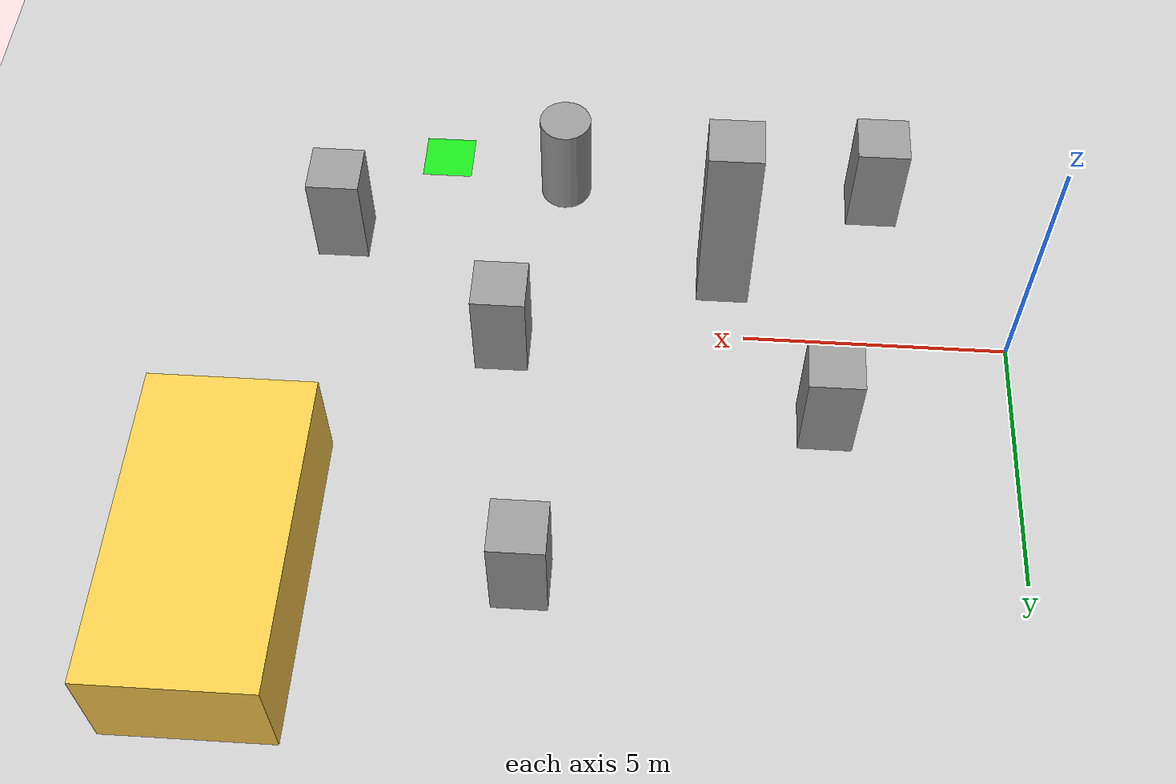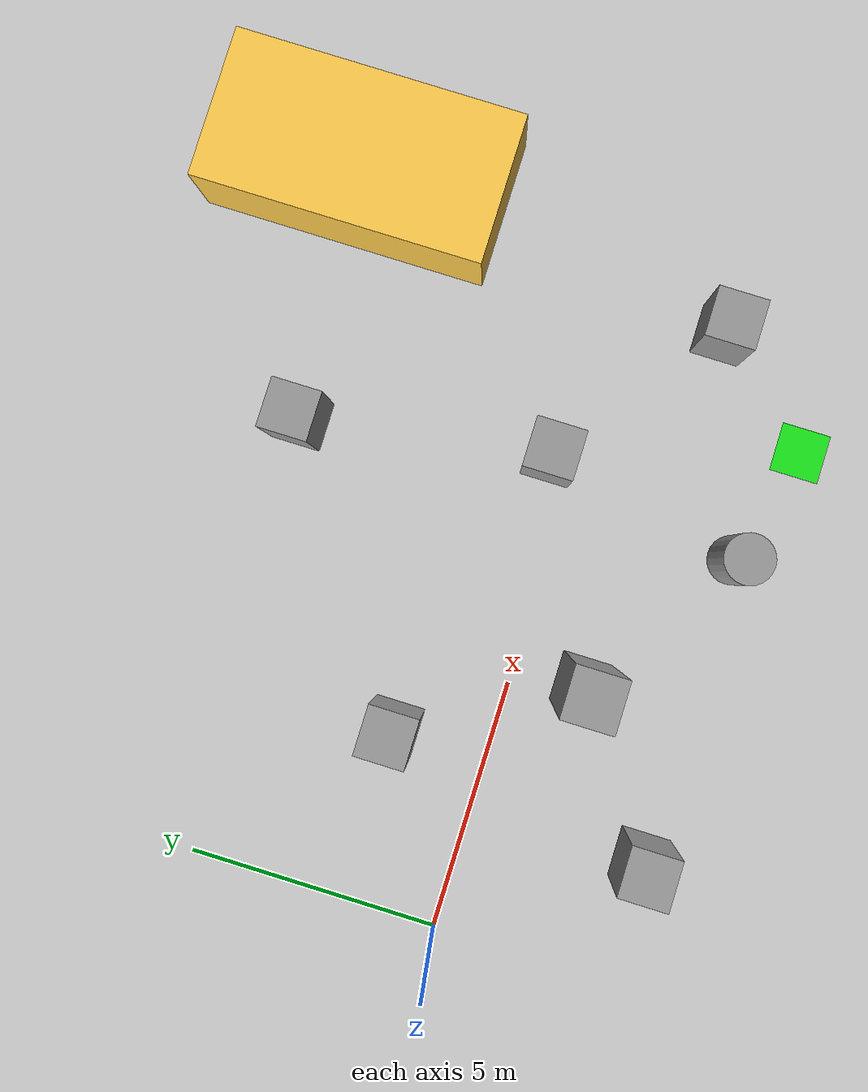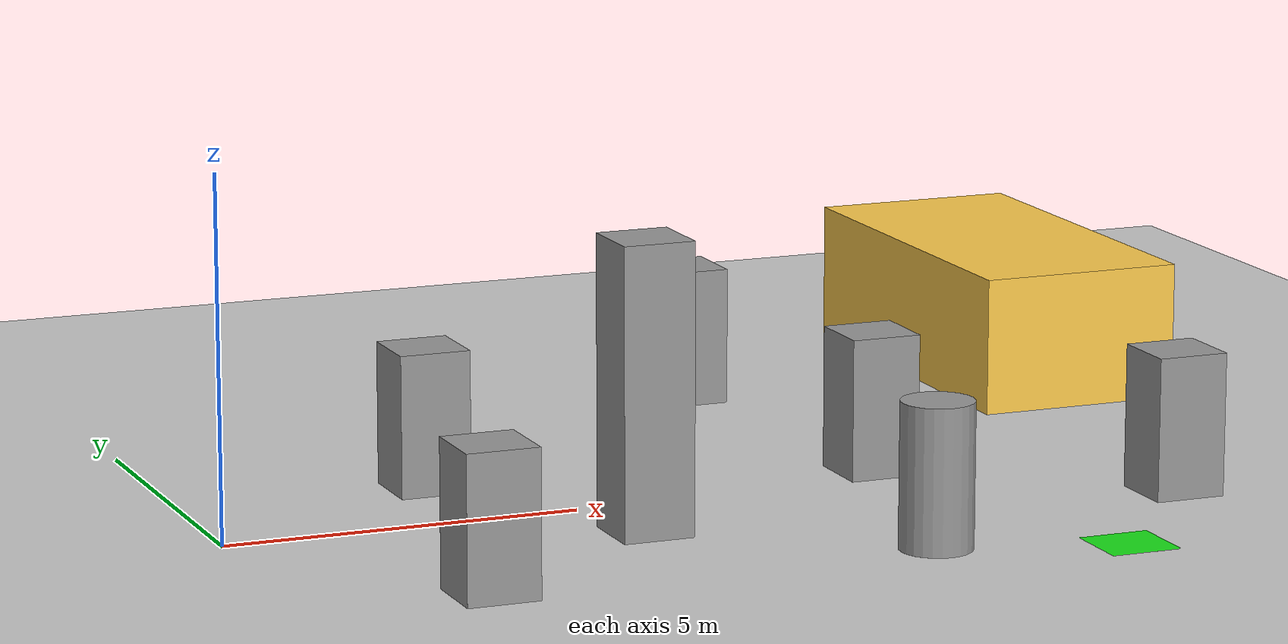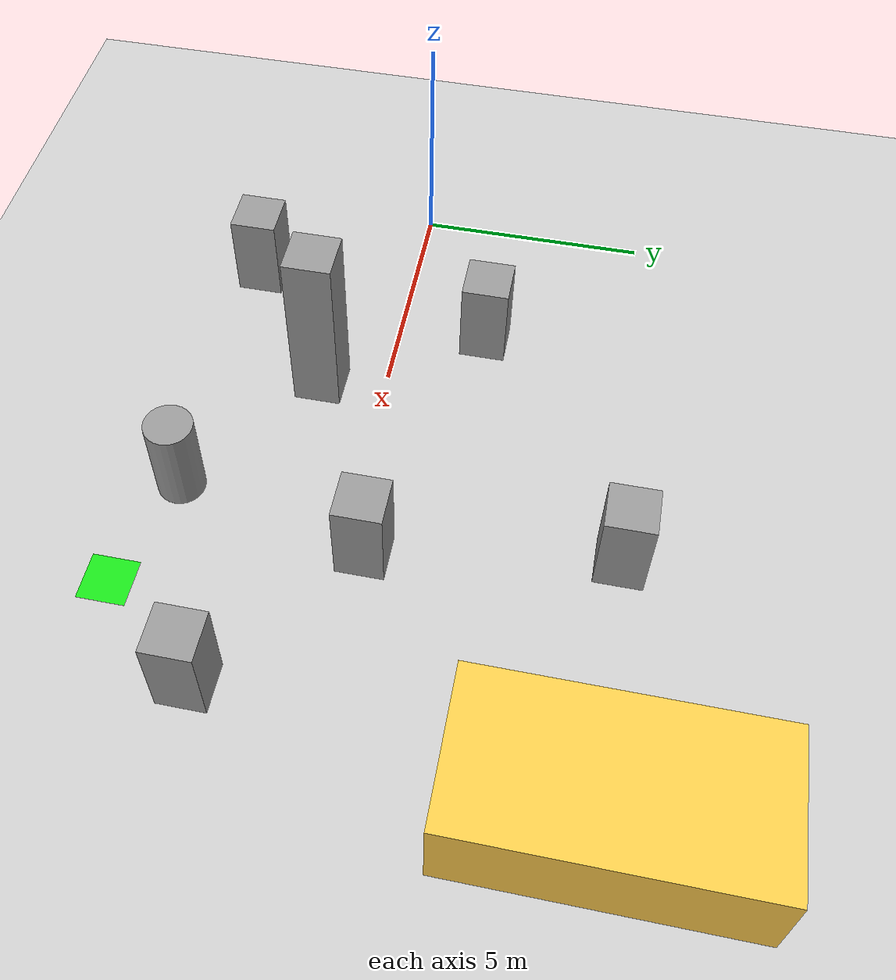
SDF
<sdf version="1.7">
 <world name="default">
  <model name="ground_plane">
   <static>1</static>
   <link name="link">
    <collision name="collision">
     <geometry><plane><normal>0 0 1</normal><size>100 100</size></plane></geometry>
     <surface>
      <contact><collide_bitmask>65535</collide_bitmask></contact>
      <friction><ode><mu>100</mu><mu2>50</mu2></ode></friction>
     </surface>
    </collision>
    <visual name="visual">
     <cast_shadows>0</cast_shadows>
     <geometry><plane><normal>0 0 1</normal><size>100 100</size></plane></geometry>
     <material>
      <script><uri>file://media/materials/scripts/gazebo.material</uri><name>Gazebo/Grey</name></script>
     </material>
    </visual>
   </link>
  </model>
  <model name="desk_chair">
   <link name="link">
    <inertial>
     <mass>3542.88</mass>
     <inertia><ixx>11305.5</ixx><ixy>0</ixy><ixz>0</ixz><iyy>3882.59</iyy><iyz>0</iyz><izz>12826.2</izz></inertia>
    </inertial>
    <visual name="visual">
     <geometry><box><size>3.025 5.856 2</size></box></geometry>
     <material>
      <script><name>Gazebo/Grey</name><uri>file://media/materials/scripts/gazebo.material</uri></script>
      <shader type="pixel"><normal_map>__default__</normal_map></shader>
      <ambient>1 0.8 0.3 1</ambient>
      <diffuse>0.7 0.7 0.7 1</diffuse>
      <specular>0.01 0.01 0.01 1</specular>
      <emissive>0 0 0 1</emissive>
     </material>
    </visual>
    <collision name="collision">
     <geometry><box><size>3.025 5.856 2</size></box></geometry>
     <surface>
      <friction>
       <ode><mu>1</mu><mu2>1</mu2><fdir1>0 0 0</fdir1><slip1>0</slip1><slip2>0</slip2></ode>
       <torsional>
        <coefficient>1</coefficient>
        <patch_radius>0</patch_radius>
        <surface_radius>0</surface_radius>
        <use_patch_radius>1</use_patch_radius>
        <ode><slip>0</slip></ode>
       </torsional>
      </friction>
      <bounce><restitution_coefficient>0</restitution_coefficient><threshold>1e+06</threshold></bounce>
      <contact>
       <collide_without_contact>0</collide_without_contact>
       <collide_without_contact_bitmask>1</collide_without_contact_bitmask>
       <collide_bitmask>1</collide_bitmask>
       <ode>
        <soft_cfm>0</soft_cfm>
        <soft_erp>0.2</soft_erp>
        <kp>1e+13</kp>
        <kd>1</kd>
        <max_vel>0.01</max_vel>
        <min_depth>0</min_depth>
       </ode>
       <bullet>
        <split_impulse>1</split_impulse>
        <split_impulse_penetration_threshold>-0.01</split_impulse_penetration_threshold>
        <soft_cfm>0</soft_cfm>
        <soft_erp>0.2</soft_erp>
        <kp>1e+13</kp>
        <kd>1</kd>
       </bullet>
      </contact>
     </surface>
    </collision>
   </link>
   <static>0</static>
   <pose>14.0317 5.8 1 0 -0 0</pose>
  </model>
  <model name="box_Z_2m_clone_0_clone_clone">
   <link name="link">
    <inertial>
     <mass>300</mass>
     <inertia><ixx>125</ixx><ixy>0</ixy><ixz>0</ixz><iyy>125</iyy><iyz>0</iyz><izz>50</izz></inertia>
    </inertial>
    <visual name="visual">
     <geometry><box><size>1 1 2</size></box></geometry>
     <material>
      <script><name>Gazebo/Grey</name><uri>file://media/materials/scripts/gazebo.material</uri></script>
      <shader type="pixel"><normal_map>__default__</normal_map></shader>
      <ambient>0.3 0.3 0.3 1</ambient>
      <diffuse>0.7 0.7 0.7 1</diffuse>
      <specular>0.01 0.01 0.01 1</specular>
      <emissive>0 0 0 1</emissive>
     </material>
    </visual>
    <collision name="collision">
     <geometry><box><size>1 1 2</size></box></geometry>
     <surface>
      <friction>
       <ode><mu>1</mu><mu2>1</mu2><fdir1>0 0 0</fdir1><slip1>0</slip1><slip2>0</slip2></ode>
       <torsional>
        <coefficient>1</coefficient>
        <patch_radius>0</patch_radius>
        <surface_radius>0</surface_radius>
        <use_patch_radius>1</use_patch_radius>
        <ode><slip>0</slip></ode>
       </torsional>
      </friction>
      <bounce><restitution_coefficient>0</restitution_coefficient><threshold>1e+06</threshold></bounce>
      <contact>
       <collide_without_contact>0</collide_without_contact>
       <collide_without_contact_bitmask>1</collide_without_contact_bitmask>
       <collide_bitmask>1</collide_bitmask>
       <ode>
        <soft_cfm>0</soft_cfm>
        <soft_erp>0.2</soft_erp>
        <kp>1e+13</kp>
        <kd>1</kd>
        <max_vel>0.01</max_vel>
        <min_depth>0</min_depth>
       </ode>
       <bullet>
        <split_impulse>1</split_impulse>
        <split_impulse_penetration_threshold>-0.01</split_impulse_penetration_threshold>
        <soft_cfm>0</soft_cfm>
        <soft_erp>0.2</soft_erp>
        <kp>1e+13</kp>
        <kd>1</kd>
       </bullet>
      </contact>
     </surface>
    </collision>
   </link>
   <static>0</static>
   <pose>12.9694 -2.0636 1 0 -0 -0.000346</pose>
  </model>
  <model name="cylinder_2m">
   <link name="link">
    <inertial>
     <mass>200</mass>
     <inertia><ixx>79.1667</ixx><ixy>0</ixy><ixz>0</ixz><iyy>79.1667</iyy><iyz>0</iyz><izz>25</izz></inertia>
    </inertial>
    <visual name="visual">
     <geometry><cylinder><radius>0.5</radius><length>2</length></cylinder></geometry>
     <material>
      <script><name>Gazebo/Grey</name><uri>file://media/materials/scripts/gazebo.material</uri></script>
      <shader type="pixel"><normal_map>__default__</normal_map></shader>
      <ambient>0.3 0.3 0.3 1</ambient>
      <diffuse>0.7 0.7 0.7 1</diffuse>
      <specular>0.01 0.01 0.01 1</specular>
      <emissive>0 0 0 1</emissive>
     </material>
    </visual>
    <collision name="collision">
     <geometry><cylinder><radius>0.5</radius><length>2</length></cylinder></geometry>
     <surface>
      <friction>
       <ode><mu>1</mu><mu2>1</mu2><fdir1>0 0 0</fdir1><slip1>0</slip1><slip2>0</slip2></ode>
       <torsional>
        <coefficient>1</coefficient>
        <patch_radius>0</patch_radius>
        <surface_radius>0</surface_radius>
        <use_patch_radius>1</use_patch_radius>
        <ode><slip>0</slip></ode>
       </torsional>
      </friction>
      <bounce><restitution_coefficient>0</restitution_coefficient><threshold>1e+06</threshold></bounce>
      <contact>
       <collide_without_contact>0</collide_without_contact>
       <collide_without_contact_bitmask>1</collide_without_contact_bitmask>
       <collide_bitmask>1</collide_bitmask>
       <ode>
        <soft_cfm>0</soft_cfm>
        <soft_erp>0.2</soft_erp>
        <kp>1e+13</kp>
        <kd>1</kd>
        <max_vel>0.01</max_vel>
        <min_depth>0</min_depth>
       </ode>
       <bullet>
        <split_impulse>1</split_impulse>
        <split_impulse_penetration_threshold>-0.01</split_impulse_penetration_threshold>
        <soft_cfm>0</soft_cfm>
        <soft_erp>0.2</soft_erp>
        <kp>1e+13</kp>
        <kd>1</kd>
       </bullet>
      </contact>
     </surface>
    </collision>
   </link>
   <static>0</static>
   <pose>8.66464 -3.58385 1 0 0 -0.000133</pose>
  </model>
  <model name="box_Z_2m_clone_0_clone">
   <link name="link">
    <inertial>
     <mass>200</mass>
     <inertia><ixx>83.3333</ixx><ixy>0</ixy><ixz>0</ixz><iyy>83.3333</iyy><iyz>0</iyz><izz>33.3333</izz></inertia>
    </inertial>
    <visual name="visual">
     <geometry><box><size>1 1 2</size></box></geometry>
     <material>
      <script><name>Gazebo/Grey</name><uri>file://media/materials/scripts/gazebo.material</uri></script>
      <shader type="pixel"><normal_map>__default__</normal_map></shader>
      <ambient>0.3 0.3 0.3 1</ambient>
      <diffuse>0.7 0.7 0.7 1</diffuse>
      <specular>0.01 0.01 0.01 1</specular>
      <emissive>0 0 0 1</emissive>
     </material>
    </visual>
    <collision name="collision">
     <geometry><box><size>1 1 2</size></box></geometry>
     <surface>
      <friction>
       <ode><mu>1</mu><mu2>1</mu2><fdir1>0 0 0</fdir1><slip1>0</slip1><slip2>0</slip2></ode>
       <torsional>
        <coefficient>1</coefficient>
        <patch_radius>0</patch_radius>
        <surface_radius>0</surface_radius>
        <use_patch_radius>1</use_patch_radius>
        <ode><slip>0</slip></ode>
       </torsional>
      </friction>
      <bounce><restitution_coefficient>0</restitution_coefficient><threshold>1e+06</threshold></bounce>
      <contact>
       <collide_without_contact>0</collide_without_contact>
       <collide_without_contact_bitmask>1</collide_without_contact_bitmask>
       <collide_bitmask>1</collide_bitmask>
       <ode>
        <soft_cfm>0</soft_cfm>
        <soft_erp>0.2</soft_erp>
        <kp>1e+13</kp>
        <kd>1</kd>
        <max_vel>0.01</max_vel>
        <min_depth>0</min_depth>
       </ode>
       <bullet>
        <split_impulse>1</split_impulse>
        <split_impulse_penetration_threshold>-0.01</split_impulse_penetration_threshold>
        <soft_cfm>0</soft_cfm>
        <soft_erp>0.2</soft_erp>
        <kp>1e+13</kp>
        <kd>1</kd>
       </bullet>
      </contact>
     </surface>
    </collision>
   </link>
   <static>0</static>
   <pose>9.58108 0.506025 1 0 -0 0</pose>
  </model>
  <model name="box_Z_2m_clone_0">
   <link name="link">
    <inertial>
     <mass>200</mass>
     <inertia><ixx>83.3333</ixx><ixy>0</ixy><ixz>0</ixz><iyy>83.3333</iyy><iyz>0</iyz><izz>33.3333</izz></inertia>
    </inertial>
    <visual name="visual">
     <geometry><box><size>1 1 2</size></box></geometry>
     <material>
      <script><name>Gazebo/Grey</name><uri>file://media/materials/scripts/gazebo.material</uri></script>
      <shader type="pixel"><normal_map>__default__</normal_map></shader>
      <ambient>0.3 0.3 0.3 1</ambient>
      <diffuse>0.7 0.7 0.7 1</diffuse>
      <specular>0.01 0.01 0.01 1</specular>
      <emissive>0 0 0 1</emissive>
     </material>
    </visual>
    <collision name="collision">
     <geometry><box><size>1 1 2</size></box></geometry>
     <surface>
      <friction>
       <ode><mu>1</mu><mu2>1</mu2><fdir1>0 0 0</fdir1><slip1>0</slip1><slip2>0</slip2></ode>
       <torsional>
        <coefficient>1</coefficient>
        <patch_radius>0</patch_radius>
        <surface_radius>0</surface_radius>
        <use_patch_radius>1</use_patch_radius>
        <ode><slip>0</slip></ode>
       </torsional>
      </friction>
      <bounce><restitution_coefficient>0</restitution_coefficient><threshold>1e+06</threshold></bounce>
      <contact>
       <collide_without_contact>0</collide_without_contact>
       <collide_without_contact_bitmask>1</collide_without_contact_bitmask>
       <collide_bitmask>1</collide_bitmask>
       <ode>
        <soft_cfm>0</soft_cfm>
        <soft_erp>0.2</soft_erp>
        <kp>1e+13</kp>
        <kd>1</kd>
        <max_vel>0.01</max_vel>
        <min_depth>0</min_depth>
       </ode>
       <bullet>
        <split_impulse>1</split_impulse>
        <split_impulse_penetration_threshold>-0.01</split_impulse_penetration_threshold>
        <soft_cfm>0</soft_cfm>
        <soft_erp>0.2</soft_erp>
        <kp>1e+13</kp>
        <kd>1</kd>
       </bullet>
      </contact>
     </surface>
    </collision>
   </link>
   <static>0</static>
   <pose>8.80935 5.51349 1 0 -0 -0.00017</pose>
  </model>
  <model name="Square_column_clone_1">
   <link name="link">
    <inertial>
     <mass>300</mass>
     <inertia><ixx>425</ixx><ixy>0</ixy><ixz>0</ixz><iyy>425</iyy><iyz>0</iyz><izz>50</izz></inertia>
    </inertial>
    <visual name="visual">
     <geometry><box><size>1 1 4</size></box></geometry>
     <material>
      <script><name>Gazebo/Grey</name><uri>file://media/materials/scripts/gazebo.material</uri></script>
      <shader type="pixel"><normal_map>__default__</normal_map></shader>
      <ambient>0.3 0.3 0.3 1</ambient>
      <diffuse>0.3 0.3 0.3 0.3</diffuse>
      <specular>0.01 0.01 0.01 1</specular>
      <emissive>0 0 0 1</emissive>
     </material>
    </visual>
    <collision name="collision">
     <geometry><box><size>1 1 4</size></box></geometry>
     <surface>
      <friction>
       <ode><mu>1</mu><mu2>1</mu2><fdir1>0 0 0</fdir1><slip1>0</slip1><slip2>0</slip2></ode>
       <torsional>
        <coefficient>1</coefficient>
        <patch_radius>0</patch_radius>
        <surface_radius>0</surface_radius>
        <use_patch_radius>1</use_patch_radius>
        <ode><slip>0</slip></ode>
       </torsional>
      </friction>
      <bounce><restitution_coefficient>0</restitution_coefficient><threshold>1e+06</threshold></bounce>
      <contact>
       <collide_without_contact>0</collide_without_contact>
       <collide_without_contact_bitmask>1</collide_without_contact_bitmask>
       <collide_bitmask>1</collide_bitmask>
       <ode>
        <soft_cfm>0</soft_cfm>
        <soft_erp>0.2</soft_erp>
        <kp>1e+13</kp>
        <kd>1</kd>
        <max_vel>0.01</max_vel>
        <min_depth>0</min_depth>
       </ode>
       <bullet>
        <split_impulse>1</split_impulse>
        <split_impulse_penetration_threshold>-0.01</split_impulse_penetration_threshold>
        <soft_cfm>0</soft_cfm>
        <soft_erp>0.2</soft_erp>
        <kp>1e+13</kp>
        <kd>1</kd>
       </bullet>
      </contact>
     </surface>
    </collision>
   </link>
   <static>0</static>
   <pose>5.44301 -1.385 2 0 -0 0.000646</pose>
  </model>
  <model name="box_Z_2m_clone_0_clone_0">
   <link name="link">
    <inertial>
     <mass>200</mass>
     <inertia><ixx>83.3333</ixx><ixy>0</ixy><ixz>0</ixz><iyy>83.3333</iyy><iyz>0</iyz><izz>33.3333</izz></inertia>
    </inertial>
    <visual name="visual">
     <geometry><box><size>1 1 2</size></box></geometry>
     <material>
      <script><name>Gazebo/Grey</name><uri>file://media/materials/scripts/gazebo.material</uri></script>
      <shader type="pixel"><normal_map>__default__</normal_map></shader>
      <ambient>0.3 0.3 0.3 1</ambient>
      <diffuse>0.7 0.7 0.7 1</diffuse>
      <specular>0.01 0.01 0.01 1</specular>
      <emissive>0 0 0 1</emissive>
     </material>
    </visual>
    <collision name="collision">
     <geometry><box><size>1 1 2</size></box></geometry>
     <surface>
      <friction>
       <ode><mu>1</mu><mu2>1</mu2><fdir1>0 0 0</fdir1><slip1>0</slip1><slip2>0</slip2></ode>
       <torsional>
        <coefficient>1</coefficient>
        <patch_radius>0</patch_radius>
        <surface_radius>0</surface_radius>
        <use_patch_radius>1</use_patch_radius>
        <ode><slip>0</slip></ode>
       </torsional>
      </friction>
      <bounce><restitution_coefficient>0</restitution_coefficient><threshold>1e+06</threshold></bounce>
      <contact>
       <collide_without_contact>0</collide_without_contact>
       <collide_without_contact_bitmask>1</collide_without_contact_bitmask>
       <collide_bitmask>1</collide_bitmask>
       <ode>
        <soft_cfm>0</soft_cfm>
        <soft_erp>0.2</soft_erp>
        <kp>1e+13</kp>
        <kd>1</kd>
        <max_vel>0.01</max_vel>
        <min_depth>0</min_depth>
       </ode>
       <bullet>
        <split_impulse>1</split_impulse>
        <split_impulse_penetration_threshold>-0.01</split_impulse_penetration_threshold>
        <soft_cfm>0</soft_cfm>
        <soft_erp>0.2</soft_erp>
        <kp>1e+13</kp>
        <kd>1</kd>
       </bullet>
      </contact>
     </surface>
    </collision>
   </link>
   <static>0</static>
   <pose>3.50052 1.92304 1 0 -0 0</pose>
  </model>
  <model name="box_Z_2m_clone_0_clone_0_clone">
   <link name="link">
    <inertial>
     <mass>200</mass>
     <inertia><ixx>83.3333</ixx><ixy>0</ixy><ixz>0</ixz><iyy>83.3333</iyy><iyz>0</iyz><izz>33.3333</izz></inertia>
    </inertial>
    <visual name="visual">
     <geometry><box><size>1 1 2</size></box></geometry>
     <material>
      <script><name>Gazebo/Grey</name><uri>file://media/materials/scripts/gazebo.material</uri></script>
      <shader type="pixel"><normal_map>__default__</normal_map></shader>
      <ambient>0.3 0.3 0.3 1</ambient>
      <diffuse>0.7 0.7 0.7 1</diffuse>
      <specular>0.01 0.01 0.01 1</specular>
      <emissive>0 0 0 1</emissive>
     </material>
    </visual>
    <collision name="collision">
     <geometry><box><size>1 1 2</size></box></geometry>
     <surface>
      <friction>
       <ode><mu>1</mu><mu2>1</mu2><fdir1>0 0 0</fdir1><slip1>0</slip1><slip2>0</slip2></ode>
       <torsional>
        <coefficient>1</coefficient>
        <patch_radius>0</patch_radius>
        <surface_radius>0</surface_radius>
        <use_patch_radius>1</use_patch_radius>
        <ode><slip>0</slip></ode>
       </torsional>
      </friction>
      <bounce><restitution_coefficient>0</restitution_coefficient><threshold>1e+06</threshold></bounce>
      <contact>
       <collide_without_contact>0</collide_without_contact>
       <collide_without_contact_bitmask>1</collide_without_contact_bitmask>
       <collide_bitmask>1</collide_bitmask>
       <ode>
        <soft_cfm>0</soft_cfm>
        <soft_erp>0.2</soft_erp>
        <kp>1e+13</kp>
        <kd>1</kd>
        <max_vel>0.01</max_vel>
        <min_depth>0</min_depth>
       </ode>
       <bullet>
        <split_impulse>1</split_impulse>
        <split_impulse_penetration_threshold>-0.01</split_impulse_penetration_threshold>
        <soft_cfm>0</soft_cfm>
        <soft_erp>0.2</soft_erp>
        <kp>1e+13</kp>
        <kd>1</kd>
       </bullet>
      </contact>
     </surface>
    </collision>
   </link>
   <static>0</static>
   <pose>2.4745 -3.50369 1 0 -0 0</pose>
  </model>
  <model name="unit_box_0_0">
   <link name="link">
    <inertial>
     <mass>1</mass>
     <inertia>
      <ixx>0.166667</ixx>
      <ixy>0</ixy>
      <ixz>0</ixz>
      <iyy>0.166667</iyy>
      <iyz>0</iyz>
      <izz>0.166667</izz>
     </inertia>
    </inertial>
    <visual name="visual">
     <geometry><box><size>1 1 0.0001</size></box></geometry>
     <material>
      <script><name>Gazebo/Grey</name><uri>file://media/materials/scripts/gazebo.material</uri></script>
      <shader type="pixel"><normal_map>__default__</normal_map></shader>
      <ambient>0.7 1 0.7 1</ambient>
      <diffuse>0.1 0.9 0.1 1</diffuse>
      <specular>0.01 0.9 0.01 1</specular>
      <emissive>0 1 0 1</emissive>
     </material>
    </visual>
    <collision name="collision">
     <geometry><box><size>1 1 0.0001</size></box></geometry>
     <surface>
      <friction>
       <ode><mu>1</mu><mu2>1</mu2><fdir1>0 0 0</fdir1><slip1>0</slip1><slip2>0</slip2></ode>
       <torsional>
        <coefficient>1</coefficient>
        <patch_radius>0</patch_radius>
        <surface_radius>0</surface_radius>
        <use_patch_radius>1</use_patch_radius>
        <ode><slip>0</slip></ode>
       </torsional>
      </friction>
      <bounce><restitution_coefficient>0</restitution_coefficient><threshold>1e+06</threshold></bounce>
      <contact>
       <collide_without_contact>0</collide_without_contact>
       <collide_without_contact_bitmask>1</collide_without_contact_bitmask>
       <collide_bitmask>1</collide_bitmask>
       <ode>
        <soft_cfm>0</soft_cfm>
        <soft_erp>0.2</soft_erp>
        <kp>1e+13</kp>
        <kd>1</kd>
        <max_vel>0.01</max_vel>
        <min_depth>0</min_depth>
       </ode>
       <bullet>
        <split_impulse>1</split_impulse>
        <split_impulse_penetration_threshold>-0.01</split_impulse_penetration_threshold>
        <soft_cfm>0</soft_cfm>
        <soft_erp>0.2</soft_erp>
        <kp>1e+13</kp>
        <kd>1</kd>
       </bullet>
      </contact>
     </surface>
    </collision>
   </link>
   <static>0</static>
   <pose>11.1499 -4.29726 5e-05 -0 -0 -0</pose>
  </model>
 </world>
</sdf>
